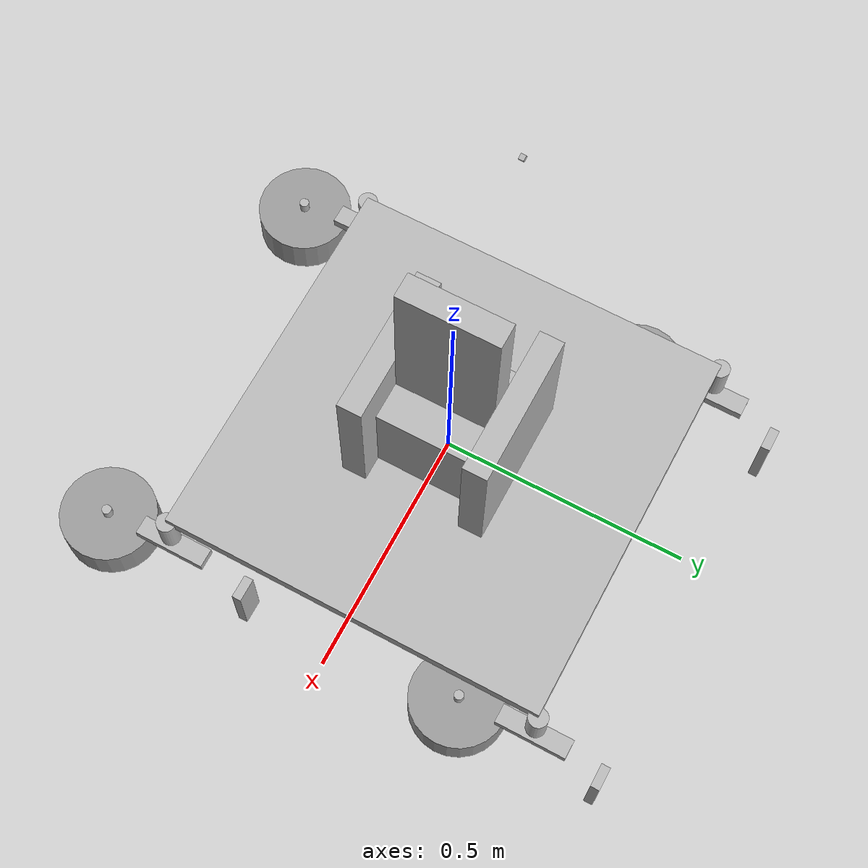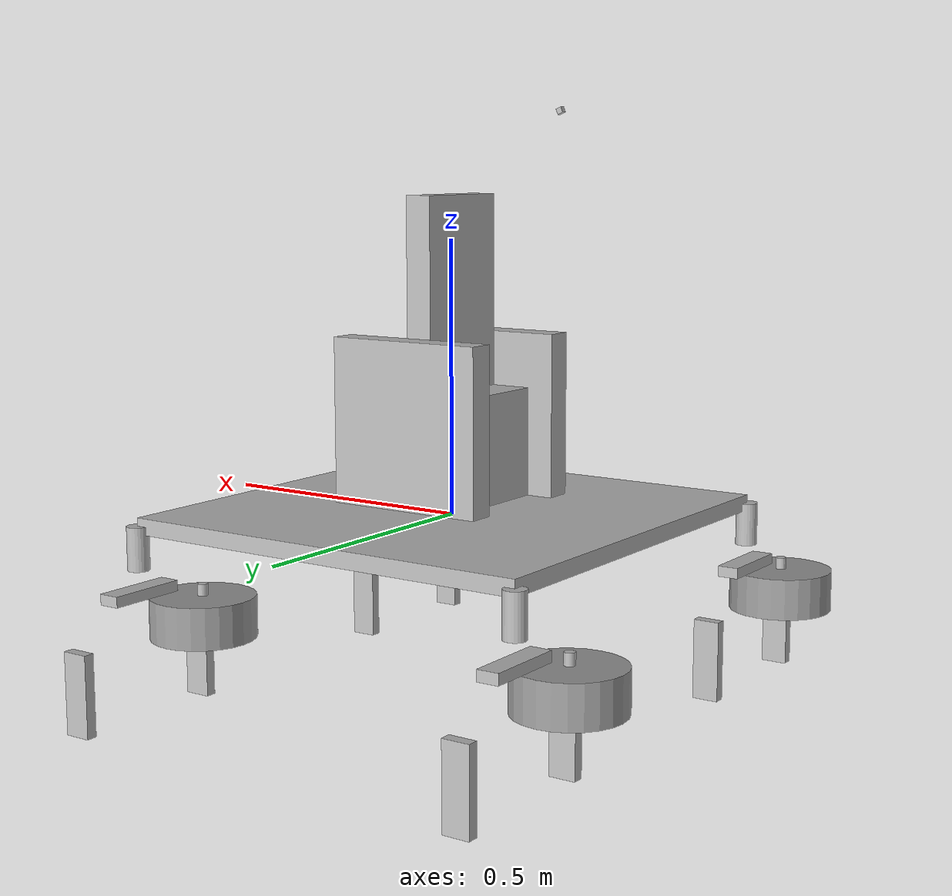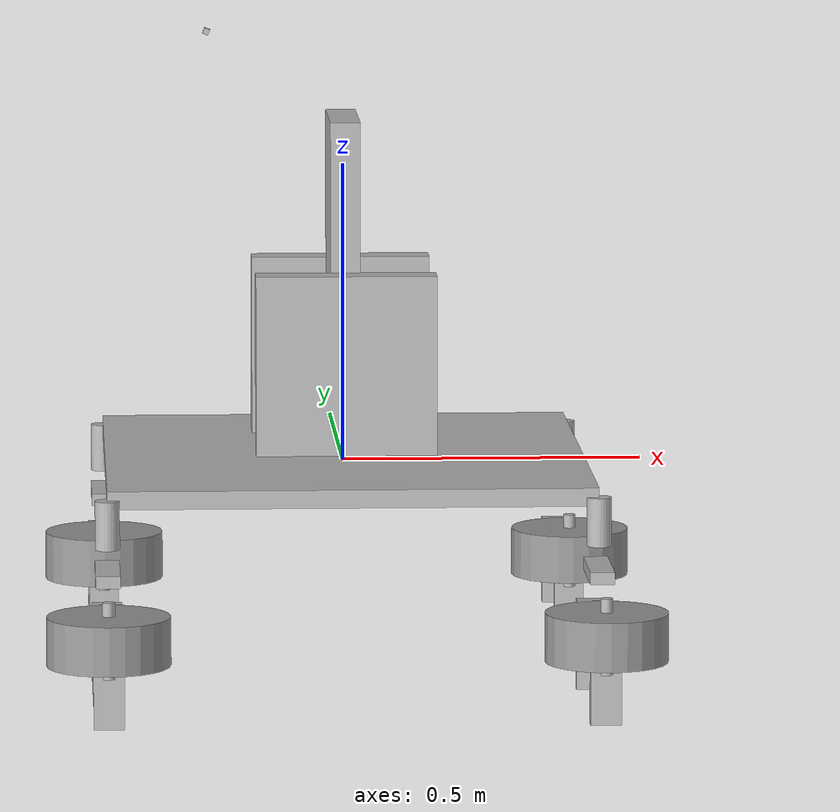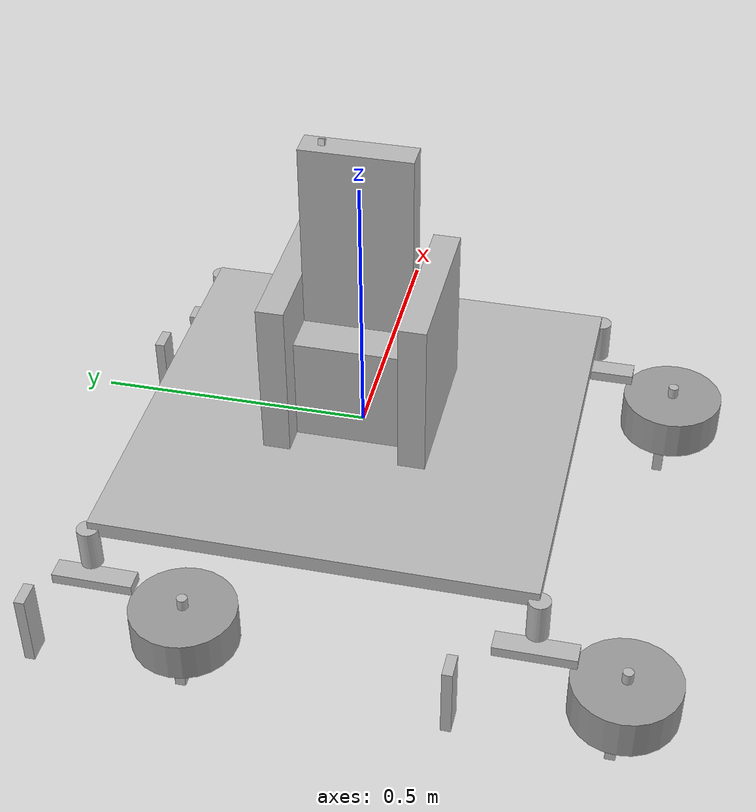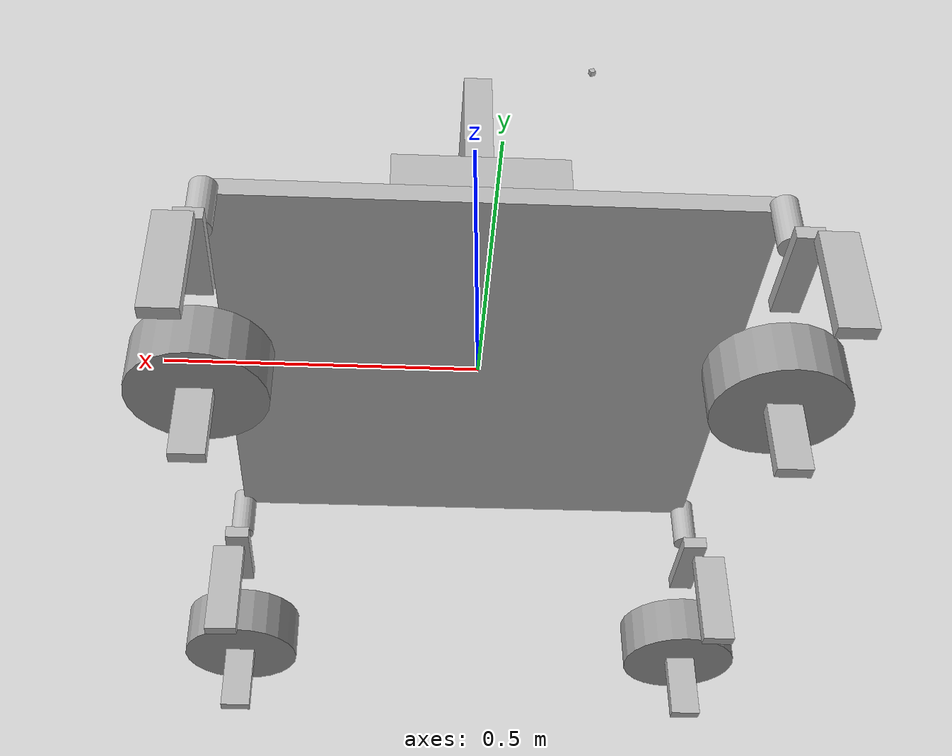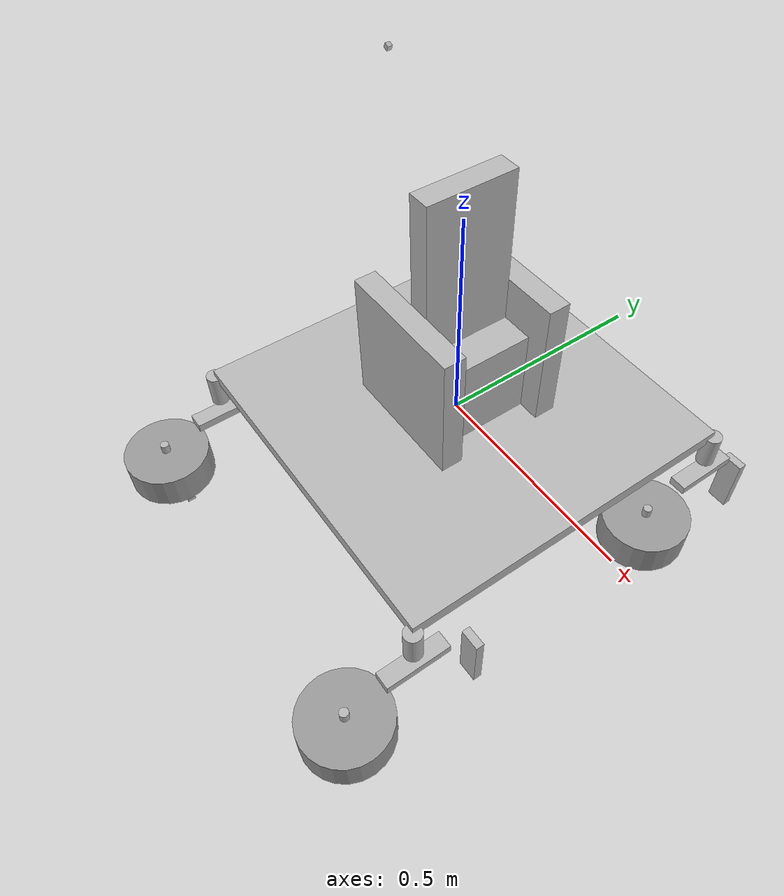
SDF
<sdf version='1.7'>
  <model name='new_wheelchair'>
    <link name='base_footprint'>
      <inertial>
        <pose>0.028571 -4.6e-05 0.124714 0 -0 0</pose>
        <mass>35</mass>
        <inertia>
          <ixx>1.06323</ixx>
          <ixy>-0.000438357</ixy>
          <ixz>-0.0402845</ixz>
          <iyy>0.787999</iyy>
          <iyz>6.41592e-05</iyz>
          <izz>1.1181</izz>
        </inertia>
      </inertial>
      <collision name='base_footprint_fixed_joint_lump__chassis_link_collision'>
        <pose>0 0 0 0 0 -0.003185</pose>
        <geometry>
          <box>
            <size>0.8 0.8 0.03</size>
          </box>
        </geometry>
      </collision>
      <collision name='base_footprint_fixed_joint_lump__camera_link_collision_1'>
        <pose>-0.227474 0.000725 0.722824 -0.000687 0.399999 -0.006575</pose>
        <geometry>
          <box>
            <size>0.01 0.01 0.01</size>
          </box>
        </geometry>
        <surface>
          <contact>
            <ode/>
          </contact>
          <friction>
            <ode/>
          </friction>
        </surface>
      </collision>
      <collision name='base_footprint_fixed_joint_lump__chair_collision_2'>
        <pose>0 0 0.13 0 0 -0.003185</pose>
        <geometry>
          <box>
            <size>0.2 0.2 0.2</size>
          </box>
        </geometry>
      </collision>
      <collision name='base_footprint_fixed_joint_lump__armrest_left_collision_3'>
        <pose>0.000557 0.124999 0.18 0 0 -0.003185</pose>
        <geometry>
          <box>
            <size>0.3 0.05 0.3</size>
          </box>
        </geometry>
      </collision>
      <collision name='base_footprint_fixed_joint_lump__armrest_right_collision_4'>
        <pose>-0.000557 -0.124999 0.18 0 0 -0.003185</pose>
        <geometry>
          <box>
            <size>0.3 0.05 0.3</size>
          </box>
        </geometry>
      </collision>
      <collision name='base_footprint_fixed_joint_lump__backrest_right_collision_5'>
        <pose>0 0.000199 0.33 0 0 -0.003185</pose>
        <geometry>
          <box>
            <size>0.05 0.2 0.5</size>
          </box>
        </geometry>
      </collision>
      <visual name='base_footprint_fixed_joint_lump__chassis_link_visual'>
        <pose>0 0 0 0 0 -0.003185</pose>
        <geometry>
          <box>
            <size>0.8 0.8 0.03</size>
          </box>
        </geometry>
      </visual>
      <visual name='base_footprint_fixed_joint_lump__camera_link_visual_1'>
        <pose>-0.227474 0.000725 0.722824 -0.000687 0.399999 -0.006575</pose>
        <geometry>
          <box>
            <size>0.01 0.01 0.01</size>
          </box>
        </geometry>
      </visual>
      <visual name='base_footprint_fixed_joint_lump__chair_visual_2'>
        <pose>0 0 0.13 0 0 -0.003185</pose>
        <geometry>
          <box>
            <size>0.2 0.2 0.2</size>
          </box>
        </geometry>
      </visual>
      <visual name='base_footprint_fixed_joint_lump__armrest_left_visual_3'>
        <pose>0.000557 0.124999 0.18 0 0 -0.003185</pose>
        <geometry>
          <box>
            <size>0.3 0.05 0.3</size>
          </box>
        </geometry>
      </visual>
      <visual name='base_footprint_fixed_joint_lump__armrest_right_visual_4'>
        <pose>-0.000557 -0.124999 0.18 0 0 -0.003185</pose>
        <geometry>
          <box>
            <size>0.3 0.05 0.3</size>
          </box>
        </geometry>
      </visual>
      <visual name='base_footprint_fixed_joint_lump__backrest_right_visual_5'>
        <pose>0 0.000199 0.33 0 0 -0.003185</pose>
        <geometry>
          <box>
            <size>0.05 0.2 0.5</size>
          </box>
        </geometry>
      </visual>
      <gravity>1</gravity>
      <velocity_decay/>
      <sensor name='camera1' type='camera'>
        <update_rate>30</update_rate>
        <camera name='head'>
          <horizontal_fov>1.39626</horizontal_fov>
          <image>
            <width>800</width>
            <height>800</height>
            <format>R8G8B8</format>
          </image>
          <clip>
            <near>0.02</near>
            <far>300</far>
          </clip>
          <noise>
            <type>gaussian</type>
            <mean>0</mean>
            <stddev>0.007</stddev>
          </noise>
        </camera>
        <plugin name='camera_controller' filename='libgazebo_ros_camera.so'>
          <alwaysOn>1</alwaysOn>
          <updateRate>30.0</updateRate>
          <cameraName>camera1</cameraName>
          <imageTopicName>image_raw</imageTopicName>
          <cameraInfoTopicName>camera_info</cameraInfoTopicName>
          <frameName>camera_link</frameName>
          <hackBaseline>0.07</hackBaseline>
          <distortionK1>0.0</distortionK1>
          <distortionK2>0.0</distortionK2>
          <distortionK3>0.0</distortionK3>
          <distortionT1>0.0</distortionT1>
          <distortionT2>0.0</distortionT2>
        </plugin>
        <pose>-0.15 0.000239 0.35 -0 0.2 -0.003185</pose>
      </sensor>
    </link>
    <joint name='steer_joint_1' type='revolute'>
      <pose relative_to='base_footprint'>0.401272 0.398724 -0.04 0 0 -0.003185</pose>
      <parent>base_footprint</parent>
      <child>fork_up_1</child>
      <axis>
        <xyz>0 0 1</xyz>
        <limit>
          <lower>-1e+16</lower>
          <upper>1e+16</upper>
        </limit>
        <dynamics>
          <spring_reference>0</spring_reference>
          <spring_stiffness>0</spring_stiffness>
        </dynamics>
      </axis>
    </joint>
    <link name='fork_up_1'>
      <pose relative_to='steer_joint_1'>0 0 0 0 -0 0</pose>
      <inertial>
        <pose>0 -0.000313 -0.127031 0 -0 0</pose>
        <mass>3.2</mass>
        <inertia>
          <ixx>0.0139212</ixx>
          <ixy>0</ixy>
          <ixz>0</ixz>
          <iyy>0.00992921</iyy>
          <iyz>-3.34688e-05</iyz>
          <izz>0.00434867</izz>
        </inertia>
      </inertial>
      <collision name='fork_up_1_collision'>
        <pose>0 0 0 0 -0 0</pose>
        <geometry>
          <cylinder>
            <length>0.08</length>
            <radius>0.02</radius>
          </cylinder>
        </geometry>
      </collision>
      <collision name='fork_up_1_fixed_joint_lump__support_1_collision_1'>
        <pose>0 0 -0.081 0 -0 0</pose>
        <geometry>
          <box>
            <size>0.04 0.15 0.02</size>
          </box>
        </geometry>
      </collision>
      <collision name='fork_up_1_fixed_joint_lump__fork_left_1_collision_2'>
        <pose>0 0.149 -0.231 0 -0 0</pose>
        <geometry>
          <box>
            <size>0.05 0.02 0.15</size>
          </box>
        </geometry>
      </collision>
      <collision name='fork_up_1_fixed_joint_lump__wheel_axis_1_collision_3'>
        <pose>0 -0.161 -0.160128 -3.14 0 0</pose>
        <geometry>
          <cylinder>
            <length>0.125</length>
            <radius>0.01</radius>
          </cylinder>
        </geometry>
      </collision>
      <collision name='fork_up_1_fixed_joint_lump__fork_right_1_collision_4'>
        <pose>0 -0.149 -0.231 0 -0 0</pose>
        <geometry>
          <box>
            <size>0.05 0.02 0.15</size>
          </box>
        </geometry>
      </collision>
      <visual name='fork_up_1_visual'>
        <pose>0 0 0 0 -0 0</pose>
        <geometry>
          <cylinder>
            <length>0.08</length>
            <radius>0.02</radius>
          </cylinder>
        </geometry>
      </visual>
      <visual name='fork_up_1_fixed_joint_lump__support_1_visual_1'>
        <pose>0 0 -0.081 0 -0 0</pose>
        <geometry>
          <box>
            <size>0.04 0.15 0.02</size>
          </box>
        </geometry>
      </visual>
      <visual name='fork_up_1_fixed_joint_lump__fork_left_1_visual_2'>
        <pose>0 0.149 -0.231 0 -0 0</pose>
        <geometry>
          <box>
            <size>0.05 0.02 0.15</size>
          </box>
        </geometry>
      </visual>
      <visual name='fork_up_1_fixed_joint_lump__wheel_axis_1_visual_3'>
        <pose>0 -0.161 -0.160128 -3.14 0 0</pose>
        <geometry>
          <cylinder>
            <length>0.125</length>
            <radius>0.01</radius>
          </cylinder>
        </geometry>
      </visual>
      <visual name='fork_up_1_fixed_joint_lump__fork_right_1_visual_4'>
        <pose>0 -0.149 -0.231 0 -0 0</pose>
        <geometry>
          <box>
            <size>0.05 0.02 0.15</size>
          </box>
        </geometry>
      </visual>
    </link>
    <joint name='wheel_joint_1' type='revolute'>
      <pose relative_to='fork_up_1'>0 -0.161 -0.160128 -3.14 0 0</pose>
      <parent>fork_up_1</parent>
      <child>wheel_1</child>
      <axis>
        <xyz>0 0 1</xyz>
        <limit>
          <lower>-1e+16</lower>
          <upper>1e+16</upper>
        </limit>
        <dynamics>
          <spring_reference>0</spring_reference>
          <spring_stiffness>0</spring_stiffness>
        </dynamics>
      </axis>
    </joint>
    <link name='wheel_1'>
      <pose relative_to='wheel_joint_1'>0 0 0 0 -0 0</pose>
      <inertial>
        <pose>0 0 0 0 -0 0</pose>
        <mass>0.5</mass>
        <inertia>
          <ixx>0.0025</ixx>
          <ixy>0</ixy>
          <ixz>0</ixz>
          <iyy>0.00125</iyy>
          <iyz>0</iyz>
          <izz>0.00125</izz>
        </inertia>
      </inertial>
      <collision name='wheel_1_collision'>
        <pose>0 0 0 0 -0 0</pose>
        <geometry>
          <cylinder>
            <length>0.08</length>
            <radius>0.1</radius>
          </cylinder>
        </geometry>
        <surface>
          <contact>
            <ode>
              <kp>1e+07</kp>
              <kd>0.8</kd>
            </ode>
          </contact>
          <friction>
            <ode>
              <mu>1.28</mu>
              <mu2>1.1</mu2>
            </ode>
          </friction>
        </surface>
      </collision>
      <visual name='wheel_1_visual'>
        <pose>0 0 0 0 -0 0</pose>
        <geometry>
          <cylinder>
            <length>0.08</length>
            <radius>0.1</radius>
          </cylinder>
        </geometry>
        <material>
          <script>
            <name>Gazebo/Grey</name>
            <uri>file://media/materials/scripts/gazebo.material</uri>
          </script>
        </material>
      </visual>
      <gravity>1</gravity>
      <velocity_decay/>
    </link>
    <joint name='steer_joint_2' type='revolute'>
      <pose relative_to='base_footprint'>-0.398724 0.401272 -0.04 0 0 -0.003185</pose>
      <parent>base_footprint</parent>
      <child>fork_up_2</child>
      <axis>
        <xyz>0 0 1</xyz>
        <limit>
          <lower>-1e+16</lower>
          <upper>1e+16</upper>
        </limit>
        <dynamics>
          <spring_reference>0</spring_reference>
          <spring_stiffness>0</spring_stiffness>
        </dynamics>
      </axis>
    </joint>
    <link name='fork_up_2'>
      <pose relative_to='steer_joint_2'>0 0 0 0 -0 0</pose>
      <inertial>
        <pose>0 -0.000313 -0.127031 0 -0 0</pose>
        <mass>3.2</mass>
        <inertia>
          <ixx>0.0139212</ixx>
          <ixy>0</ixy>
          <ixz>0</ixz>
          <iyy>0.00992921</iyy>
          <iyz>-3.34688e-05</iyz>
          <izz>0.00434867</izz>
        </inertia>
      </inertial>
      <collision name='fork_up_2_collision'>
        <pose>0 0 0 0 -0 0</pose>
        <geometry>
          <cylinder>
            <length>0.08</length>
            <radius>0.02</radius>
          </cylinder>
        </geometry>
      </collision>
      <collision name='fork_up_2_fixed_joint_lump__support_2_collision_1'>
        <pose>0 0 -0.081 0 -0 0</pose>
        <geometry>
          <box>
            <size>0.04 0.15 0.02</size>
          </box>
        </geometry>
      </collision>
      <collision name='fork_up_2_fixed_joint_lump__fork_left_2_collision_2'>
        <pose>0 0.149 -0.231 0 -0 0</pose>
        <geometry>
          <box>
            <size>0.05 0.02 0.15</size>
          </box>
        </geometry>
      </collision>
      <collision name='fork_up_2_fixed_joint_lump__wheel_axis_2_collision_3'>
        <pose>0 -0.161 -0.160128 -3.14 0 0</pose>
        <geometry>
          <cylinder>
            <length>0.125</length>
            <radius>0.01</radius>
          </cylinder>
        </geometry>
      </collision>
      <collision name='fork_up_2_fixed_joint_lump__fork_right_2_collision_4'>
        <pose>0 -0.149 -0.231 0 -0 0</pose>
        <geometry>
          <box>
            <size>0.05 0.02 0.15</size>
          </box>
        </geometry>
      </collision>
      <visual name='fork_up_2_visual'>
        <pose>0 0 0 0 -0 0</pose>
        <geometry>
          <cylinder>
            <length>0.08</length>
            <radius>0.02</radius>
          </cylinder>
        </geometry>
      </visual>
      <visual name='fork_up_2_fixed_joint_lump__support_2_visual_1'>
        <pose>0 0 -0.081 0 -0 0</pose>
        <geometry>
          <box>
            <size>0.04 0.15 0.02</size>
          </box>
        </geometry>
      </visual>
      <visual name='fork_up_2_fixed_joint_lump__fork_left_2_visual_2'>
        <pose>0 0.149 -0.231 0 -0 0</pose>
        <geometry>
          <box>
            <size>0.05 0.02 0.15</size>
          </box>
        </geometry>
      </visual>
      <visual name='fork_up_2_fixed_joint_lump__wheel_axis_2_visual_3'>
        <pose>0 -0.161 -0.160128 -3.14 0 0</pose>
        <geometry>
          <cylinder>
            <length>0.125</length>
            <radius>0.01</radius>
          </cylinder>
        </geometry>
      </visual>
      <visual name='fork_up_2_fixed_joint_lump__fork_right_2_visual_4'>
        <pose>0 -0.149 -0.231 0 -0 0</pose>
        <geometry>
          <box>
            <size>0.05 0.02 0.15</size>
          </box>
        </geometry>
      </visual>
    </link>
    <joint name='wheel_joint_2' type='revolute'>
      <pose relative_to='fork_up_2'>0 -0.161 -0.160128 -3.14 0 0</pose>
      <parent>fork_up_2</parent>
      <child>wheel_2</child>
      <axis>
        <xyz>0 0 1</xyz>
        <limit>
          <lower>-1e+16</lower>
          <upper>1e+16</upper>
        </limit>
        <dynamics>
          <spring_reference>0</spring_reference>
          <spring_stiffness>0</spring_stiffness>
        </dynamics>
      </axis>
    </joint>
    <link name='wheel_2'>
      <pose relative_to='wheel_joint_2'>0 0 0 0 -0 0</pose>
      <inertial>
        <pose>0 0 0 0 -0 0</pose>
        <mass>0.5</mass>
        <inertia>
          <ixx>0.0025</ixx>
          <ixy>0</ixy>
          <ixz>0</ixz>
          <iyy>0.00125</iyy>
          <iyz>0</iyz>
          <izz>0.00125</izz>
        </inertia>
      </inertial>
      <collision name='wheel_2_collision'>
        <pose>0 0 0 0 -0 0</pose>
        <geometry>
          <cylinder>
            <length>0.08</length>
            <radius>0.1</radius>
          </cylinder>
        </geometry>
        <surface>
          <contact>
            <ode>
              <kp>1e+07</kp>
              <kd>0.8</kd>
            </ode>
          </contact>
          <friction>
            <ode>
              <mu>1.28</mu>
              <mu2>1.1</mu2>
            </ode>
          </friction>
        </surface>
      </collision>
      <visual name='wheel_2_visual'>
        <pose>0 0 0 0 -0 0</pose>
        <geometry>
          <cylinder>
            <length>0.08</length>
            <radius>0.1</radius>
          </cylinder>
        </geometry>
        <material>
          <script>
            <name>Gazebo/Grey</name>
            <uri>file://media/materials/scripts/gazebo.material</uri>
          </script>
        </material>
      </visual>
      <gravity>1</gravity>
      <velocity_decay/>
    </link>
    <joint name='steer_joint_3' type='revolute'>
      <pose relative_to='base_footprint'>0.398724 -0.401272 -0.04 0 0 -0.003185</pose>
      <parent>base_footprint</parent>
      <child>fork_up_3</child>
      <axis>
        <xyz>0 0 1</xyz>
        <limit>
          <lower>-1e+16</lower>
          <upper>1e+16</upper>
        </limit>
        <dynamics>
          <spring_reference>0</spring_reference>
          <spring_stiffness>0</spring_stiffness>
        </dynamics>
      </axis>
    </joint>
    <link name='fork_up_3'>
      <pose relative_to='steer_joint_3'>0 0 0 0 -0 0</pose>
      <inertial>
        <pose>0 -0.000313 -0.127031 0 -0 0</pose>
        <mass>3.2</mass>
        <inertia>
          <ixx>0.0139212</ixx>
          <ixy>0</ixy>
          <ixz>0</ixz>
          <iyy>0.00992921</iyy>
          <iyz>-3.34688e-05</iyz>
          <izz>0.00434867</izz>
        </inertia>
      </inertial>
      <collision name='fork_up_3_collision'>
        <pose>0 0 0 0 -0 0</pose>
        <geometry>
          <cylinder>
            <length>0.08</length>
            <radius>0.02</radius>
          </cylinder>
        </geometry>
      </collision>
      <collision name='fork_up_3_fixed_joint_lump__support_3_collision_1'>
        <pose>0 0 -0.081 0 -0 0</pose>
        <geometry>
          <box>
            <size>0.04 0.15 0.02</size>
          </box>
        </geometry>
      </collision>
      <collision name='fork_up_3_fixed_joint_lump__fork_left_3_collision_2'>
        <pose>0 0.149 -0.231 0 -0 0</pose>
        <geometry>
          <box>
            <size>0.05 0.02 0.15</size>
          </box>
        </geometry>
      </collision>
      <collision name='fork_up_3_fixed_joint_lump__wheel_axis_3_collision_3'>
        <pose>0 -0.161 -0.160128 -3.14 0 0</pose>
        <geometry>
          <cylinder>
            <length>0.125</length>
            <radius>0.01</radius>
          </cylinder>
        </geometry>
      </collision>
      <collision name='fork_up_3_fixed_joint_lump__fork_right_3_collision_4'>
        <pose>0 -0.149 -0.231 0 -0 0</pose>
        <geometry>
          <box>
            <size>0.05 0.02 0.15</size>
          </box>
        </geometry>
      </collision>
      <visual name='fork_up_3_visual'>
        <pose>0 0 0 0 -0 0</pose>
        <geometry>
          <cylinder>
            <length>0.08</length>
            <radius>0.02</radius>
          </cylinder>
        </geometry>
      </visual>
      <visual name='fork_up_3_fixed_joint_lump__support_3_visual_1'>
        <pose>0 0 -0.081 0 -0 0</pose>
        <geometry>
          <box>
            <size>0.04 0.15 0.02</size>
          </box>
        </geometry>
      </visual>
      <visual name='fork_up_3_fixed_joint_lump__fork_left_3_visual_2'>
        <pose>0 0.149 -0.231 0 -0 0</pose>
        <geometry>
          <box>
            <size>0.05 0.02 0.15</size>
          </box>
        </geometry>
      </visual>
      <visual name='fork_up_3_fixed_joint_lump__wheel_axis_3_visual_3'>
        <pose>0 -0.161 -0.160128 -3.14 0 0</pose>
        <geometry>
          <cylinder>
            <length>0.125</length>
            <radius>0.01</radius>
          </cylinder>
        </geometry>
      </visual>
      <visual name='fork_up_3_fixed_joint_lump__fork_right_3_visual_4'>
        <pose>0 -0.149 -0.231 0 -0 0</pose>
        <geometry>
          <box>
            <size>0.05 0.02 0.15</size>
          </box>
        </geometry>
      </visual>
    </link>
    <joint name='wheel_joint_3' type='revolute'>
      <pose relative_to='fork_up_3'>0 -0.161 -0.160128 -3.14 0 0</pose>
      <parent>fork_up_3</parent>
      <child>wheel_3</child>
      <axis>
        <xyz>0 0 1</xyz>
        <limit>
          <lower>-1e+16</lower>
          <upper>1e+16</upper>
        </limit>
        <dynamics>
          <spring_reference>0</spring_reference>
          <spring_stiffness>0</spring_stiffness>
        </dynamics>
      </axis>
    </joint>
    <link name='wheel_3'>
      <pose relative_to='wheel_joint_3'>0 0 0 0 -0 0</pose>
      <inertial>
        <pose>0 0 0 0 -0 0</pose>
        <mass>0.5</mass>
        <inertia>
          <ixx>0.0025</ixx>
          <ixy>0</ixy>
          <ixz>0</ixz>
          <iyy>0.00125</iyy>
          <iyz>0</iyz>
          <izz>0.00125</izz>
        </inertia>
      </inertial>
      <collision name='wheel_3_collision'>
        <pose>0 0 0 0 -0 0</pose>
        <geometry>
          <cylinder>
            <length>0.08</length>
            <radius>0.1</radius>
          </cylinder>
        </geometry>
        <surface>
          <contact>
            <ode>
              <kp>1e+07</kp>
              <kd>0.8</kd>
            </ode>
          </contact>
          <friction>
            <ode>
              <mu>1.28</mu>
              <mu2>1.1</mu2>
            </ode>
          </friction>
        </surface>
      </collision>
      <visual name='wheel_3_visual'>
        <pose>0 0 0 0 -0 0</pose>
        <geometry>
          <cylinder>
            <length>0.08</length>
            <radius>0.1</radius>
          </cylinder>
        </geometry>
        <material>
          <script>
            <name>Gazebo/Grey</name>
            <uri>file://media/materials/scripts/gazebo.material</uri>
          </script>
        </material>
      </visual>
      <gravity>1</gravity>
      <velocity_decay/>
    </link>
    <joint name='steer_joint_4' type='revolute'>
      <pose relative_to='base_footprint'>-0.401272 -0.398724 -0.04 0 0 -0.003185</pose>
      <parent>base_footprint</parent>
      <child>fork_up_4</child>
      <axis>
        <xyz>0 0 1</xyz>
        <limit>
          <lower>-1e+16</lower>
          <upper>1e+16</upper>
        </limit>
        <dynamics>
          <spring_reference>0</spring_reference>
          <spring_stiffness>0</spring_stiffness>
        </dynamics>
      </axis>
    </joint>
    <link name='fork_up_4'>
      <pose relative_to='steer_joint_4'>0 0 0 0 -0 0</pose>
      <inertial>
        <pose>0 -0.000313 -0.127031 0 -0 0</pose>
        <mass>3.2</mass>
        <inertia>
          <ixx>0.0139212</ixx>
          <ixy>0</ixy>
          <ixz>0</ixz>
          <iyy>0.00992921</iyy>
          <iyz>-3.34688e-05</iyz>
          <izz>0.00434867</izz>
        </inertia>
      </inertial>
      <collision name='fork_up_4_collision'>
        <pose>0 0 0 0 -0 0</pose>
        <geometry>
          <cylinder>
            <length>0.08</length>
            <radius>0.02</radius>
          </cylinder>
        </geometry>
      </collision>
      <collision name='fork_up_4_fixed_joint_lump__support_4_collision_1'>
        <pose>0 0 -0.081 0 -0 0</pose>
        <geometry>
          <box>
            <size>0.04 0.15 0.02</size>
          </box>
        </geometry>
      </collision>
      <collision name='fork_up_4_fixed_joint_lump__fork_left_4_collision_2'>
        <pose>0 0.149 -0.231 0 -0 0</pose>
        <geometry>
          <box>
            <size>0.05 0.02 0.15</size>
          </box>
        </geometry>
      </collision>
      <collision name='fork_up_4_fixed_joint_lump__wheel_axis_4_collision_3'>
        <pose>0 -0.161 -0.160128 -3.14 0 0</pose>
        <geometry>
          <cylinder>
            <length>0.125</length>
            <radius>0.01</radius>
          </cylinder>
        </geometry>
      </collision>
      <collision name='fork_up_4_fixed_joint_lump__fork_right_4_collision_4'>
        <pose>0 -0.149 -0.231 0 -0 0</pose>
        <geometry>
          <box>
            <size>0.05 0.02 0.15</size>
          </box>
        </geometry>
      </collision>
      <visual name='fork_up_4_visual'>
        <pose>0 0 0 0 -0 0</pose>
        <geometry>
          <cylinder>
            <length>0.08</length>
            <radius>0.02</radius>
          </cylinder>
        </geometry>
      </visual>
      <visual name='fork_up_4_fixed_joint_lump__support_4_visual_1'>
        <pose>0 0 -0.081 0 -0 0</pose>
        <geometry>
          <box>
            <size>0.04 0.15 0.02</size>
          </box>
        </geometry>
      </visual>
      <visual name='fork_up_4_fixed_joint_lump__fork_left_4_visual_2'>
        <pose>0 0.149 -0.231 0 -0 0</pose>
        <geometry>
          <box>
            <size>0.05 0.02 0.15</size>
          </box>
        </geometry>
      </visual>
      <visual name='fork_up_4_fixed_joint_lump__wheel_axis_4_visual_3'>
        <pose>0 -0.161 -0.160128 -3.14 0 0</pose>
        <geometry>
          <cylinder>
            <length>0.125</length>
            <radius>0.01</radius>
          </cylinder>
        </geometry>
      </visual>
      <visual name='fork_up_4_fixed_joint_lump__fork_right_4_visual_4'>
        <pose>0 -0.149 -0.231 0 -0 0</pose>
        <geometry>
          <box>
            <size>0.05 0.02 0.15</size>
          </box>
        </geometry>
      </visual>
    </link>
    <joint name='wheel_joint_4' type='revolute'>
      <pose relative_to='fork_up_4'>0 -0.161 -0.160128 -3.14 0 0</pose>
      <parent>fork_up_4</parent>
      <child>wheel_4</child>
      <axis>
        <xyz>0 0 1</xyz>
        <limit>
          <lower>-1e+16</lower>
          <upper>1e+16</upper>
        </limit>
        <dynamics>
          <spring_reference>0</spring_reference>
          <spring_stiffness>0</spring_stiffness>
        </dynamics>
      </axis>
    </joint>
    <link name='wheel_4'>
      <pose relative_to='wheel_joint_4'>0 0 0 0 -0 0</pose>
      <inertial>
        <pose>0 0 0 0 -0 0</pose>
        <mass>0.5</mass>
        <inertia>
          <ixx>0.0025</ixx>
          <ixy>0</ixy>
          <ixz>0</ixz>
          <iyy>0.00125</iyy>
          <iyz>0</iyz>
          <izz>0.00125</izz>
        </inertia>
      </inertial>
      <collision name='wheel_4_collision'>
        <pose>0 0 0 0 -0 0</pose>
        <geometry>
          <cylinder>
            <length>0.08</length>
            <radius>0.1</radius>
          </cylinder>
        </geometry>
        <surface>
          <contact>
            <ode>
              <kp>1e+07</kp>
              <kd>0.8</kd>
            </ode>
          </contact>
          <friction>
            <ode>
              <mu>1.28</mu>
              <mu2>1.1</mu2>
            </ode>
          </friction>
        </surface>
      </collision>
      <visual name='wheel_4_visual'>
        <pose>0 0 0 0 -0 0</pose>
        <geometry>
          <cylinder>
            <length>0.08</length>
            <radius>0.1</radius>
          </cylinder>
        </geometry>
        <material>
          <script>
            <name>Gazebo/Grey</name>
            <uri>file://media/materials/scripts/gazebo.material</uri>
          </script>
        </material>
      </visual>
      <gravity>1</gravity>
      <velocity_decay/>
    </link>
    <joint name='steer_joint_1' type='revolute'>
      <pose relative_to='base_footprint'>0.401272 0.398724 -0.04 0 0 -0.003185</pose>
      <parent>base_footprint</parent>
      <child>fork_up_1</child>
      <axis>
        <xyz>0 0 1</xyz>
        <limit>
          <lower>-1e+16</lower>
          <upper>1e+16</upper>
        </limit>
        <dynamics>
          <spring_reference>0</spring_reference>
          <spring_stiffness>0</spring_stiffness>
        </dynamics>
      </axis>
    </joint>
    <link name='fork_up_1'>
      <pose relative_to='steer_joint_1'>0 0 0 0 -0 0</pose>
      <inertial>
        <pose>0 -0.000313 -0.127031 0 -0 0</pose>
        <mass>3.2</mass>
        <inertia>
          <ixx>0.0139212</ixx>
          <ixy>0</ixy>
          <ixz>0</ixz>
          <iyy>0.00992921</iyy>
          <iyz>-3.34688e-05</iyz>
          <izz>0.00434867</izz>
        </inertia>
      </inertial>
      <collision name='fork_up_1_collision'>
        <pose>0 0 0 0 -0 0</pose>
        <geometry>
          <cylinder>
            <length>0.08</length>
            <radius>0.02</radius>
          </cylinder>
        </geometry>
      </collision>
      <collision name='fork_up_1_fixed_joint_lump__support_1_collision_1'>
        <pose>0 0 -0.081 0 -0 0</pose>
        <geometry>
          <box>
            <size>0.04 0.15 0.02</size>
          </box>
        </geometry>
      </collision>
      <collision name='fork_up_1_fixed_joint_lump__fork_left_1_collision_2'>
        <pose>0 0.149 -0.231 0 -0 0</pose>
        <geometry>
          <box>
            <size>0.05 0.02 0.15</size>
          </box>
        </geometry>
      </collision>
      <collision name='fork_up_1_fixed_joint_lump__wheel_axis_1_collision_3'>
        <pose>0 -0.161 -0.160128 -3.14 0 0</pose>
        <geometry>
          <cylinder>
            <length>0.125</length>
            <radius>0.01</radius>
          </cylinder>
        </geometry>
      </collision>
      <collision name='fork_up_1_fixed_joint_lump__fork_right_1_collision_4'>
        <pose>0 -0.149 -0.231 0 -0 0</pose>
        <geometry>
          <box>
            <size>0.05 0.02 0.15</size>
          </box>
        </geometry>
      </collision>
      <visual name='fork_up_1_visual'>
        <pose>0 0 0 0 -0 0</pose>
        <geometry>
          <cylinder>
            <length>0.08</length>
            <radius>0.02</radius>
          </cylinder>
        </geometry>
      </visual>
      <visual name='fork_up_1_fixed_joint_lump__support_1_visual_1'>
        <pose>0 0 -0.081 0 -0 0</pose>
        <geometry>
          <box>
            <size>0.04 0.15 0.02</size>
          </box>
        </geometry>
      </visual>
      <visual name='fork_up_1_fixed_joint_lump__fork_left_1_visual_2'>
        <pose>0 0.149 -0.231 0 -0 0</pose>
        <geometry>
          <box>
            <size>0.05 0.02 0.15</size>
          </box>
        </geometry>
      </visual>
      <visual name='fork_up_1_fixed_joint_lump__wheel_axis_1_visual_3'>
        <pose>0 -0.161 -0.160128 -3.14 0 0</pose>
        <geometry>
          <cylinder>
            <length>0.125</length>
            <radius>0.01</radius>
          </cylinder>
        </geometry>
      </visual>
      <visual name='fork_up_1_fixed_joint_lump__fork_right_1_visual_4'>
        <pose>0 -0.149 -0.231 0 -0 0</pose>
        <geometry>
          <box>
            <size>0.05 0.02 0.15</size>
          </box>
        </geometry>
      </visual>
    </link>
    <joint name='wheel_joint_1' type='revolute'>
      <pose relative_to='fork_up_1'>0 -0.161 -0.160128 -3.14 0 0</pose>
      <parent>fork_up_1</parent>
      <child>wheel_1</child>
      <axis>
        <xyz>0 0 1</xyz>
        <limit>
          <lower>-1e+16</lower>
          <upper>1e+16</upper>
        </limit>
        <dynamics>
          <spring_reference>0</spring_reference>
          <spring_stiffness>0</spring_stiffness>
        </dynamics>
      </axis>
    </joint>
    <link name='wheel_1'>
      <pose relative_to='wheel_joint_1'>0 0 0 0 -0 0</pose>
      <inertial>
        <pose>0 0 0 0 -0 0</pose>
        <mass>0.5</mass>
        <inertia>
          <ixx>0.0025</ixx>
          <ixy>0</ixy>
          <ixz>0</ixz>
          <iyy>0.00125</iyy>
          <iyz>0</iyz>
          <izz>0.00125</izz>
        </inertia>
      </inertial>
      <collision name='wheel_1_collision'>
        <pose>0 0 0 0 -0 0</pose>
        <geometry>
          <cylinder>
            <length>0.08</length>
            <radius>0.1</radius>
          </cylinder>
        </geometry>
        <surface>
          <contact>
            <ode>
              <kp>1e+07</kp>
              <kd>0.8</kd>
            </ode>
          </contact>
          <friction>
            <ode>
              <mu>1.28</mu>
              <mu2>1.1</mu2>
            </ode>
          </friction>
        </surface>
      </collision>
      <visual name='wheel_1_visual'>
        <pose>0 0 0 0 -0 0</pose>
        <geometry>
          <cylinder>
            <length>0.08</length>
            <radius>0.1</radius>
          </cylinder>
        </geometry>
        <material>
          <script>
            <name>Gazebo/Grey</name>
            <uri>file://media/materials/scripts/gazebo.material</uri>
          </script>
        </material>
      </visual>
      <gravity>1</gravity>
      <velocity_decay/>
    </link>
    <joint name='steer_joint_2' type='revolute'>
      <pose relative_to='base_footprint'>-0.398724 0.401272 -0.04 0 0 -0.003185</pose>
      <parent>base_footprint</parent>
      <child>fork_up_2</child>
      <axis>
        <xyz>0 0 1</xyz>
        <limit>
          <lower>-1e+16</lower>
          <upper>1e+16</upper>
        </limit>
        <dynamics>
          <spring_reference>0</spring_reference>
          <spring_stiffness>0</spring_stiffness>
        </dynamics>
      </axis>
    </joint>
    <link name='fork_up_2'>
      <pose relative_to='steer_joint_2'>0 0 0 0 -0 0</pose>
      <inertial>
        <pose>0 -0.000313 -0.127031 0 -0 0</pose>
        <mass>3.2</mass>
        <inertia>
          <ixx>0.0139212</ixx>
          <ixy>0</ixy>
          <ixz>0</ixz>
          <iyy>0.00992921</iyy>
          <iyz>-3.34688e-05</iyz>
          <izz>0.00434867</izz>
        </inertia>
      </inertial>
      <collision name='fork_up_2_collision'>
        <pose>0 0 0 0 -0 0</pose>
        <geometry>
          <cylinder>
            <length>0.08</length>
            <radius>0.02</radius>
          </cylinder>
        </geometry>
      </collision>
      <collision name='fork_up_2_fixed_joint_lump__support_2_collision_1'>
        <pose>0 0 -0.081 0 -0 0</pose>
        <geometry>
          <box>
            <size>0.04 0.15 0.02</size>
          </box>
        </geometry>
      </collision>
      <collision name='fork_up_2_fixed_joint_lump__fork_left_2_collision_2'>
        <pose>0 0.149 -0.231 0 -0 0</pose>
        <geometry>
          <box>
            <size>0.05 0.02 0.15</size>
          </box>
        </geometry>
      </collision>
      <collision name='fork_up_2_fixed_joint_lump__wheel_axis_2_collision_3'>
        <pose>0 -0.161 -0.160128 -3.14 0 0</pose>
        <geometry>
          <cylinder>
            <length>0.125</length>
            <radius>0.01</radius>
          </cylinder>
        </geometry>
      </collision>
      <collision name='fork_up_2_fixed_joint_lump__fork_right_2_collision_4'>
        <pose>0 -0.149 -0.231 0 -0 0</pose>
        <geometry>
          <box>
            <size>0.05 0.02 0.15</size>
          </box>
        </geometry>
      </collision>
      <visual name='fork_up_2_visual'>
        <pose>0 0 0 0 -0 0</pose>
        <geometry>
          <cylinder>
            <length>0.08</length>
            <radius>0.02</radius>
          </cylinder>
        </geometry>
      </visual>
      <visual name='fork_up_2_fixed_joint_lump__support_2_visual_1'>
        <pose>0 0 -0.081 0 -0 0</pose>
        <geometry>
          <box>
            <size>0.04 0.15 0.02</size>
          </box>
        </geometry>
      </visual>
      <visual name='fork_up_2_fixed_joint_lump__fork_left_2_visual_2'>
        <pose>0 0.149 -0.231 0 -0 0</pose>
        <geometry>
          <box>
            <size>0.05 0.02 0.15</size>
          </box>
        </geometry>
      </visual>
      <visual name='fork_up_2_fixed_joint_lump__wheel_axis_2_visual_3'>
        <pose>0 -0.161 -0.160128 -3.14 0 0</pose>
        <geometry>
          <cylinder>
            <length>0.125</length>
            <radius>0.01</radius>
          </cylinder>
        </geometry>
      </visual>
      <visual name='fork_up_2_fixed_joint_lump__fork_right_2_visual_4'>
        <pose>0 -0.149 -0.231 0 -0 0</pose>
        <geometry>
          <box>
            <size>0.05 0.02 0.15</size>
          </box>
        </geometry>
      </visual>
    </link>
    <joint name='wheel_joint_2' type='revolute'>
      <pose relative_to='fork_up_2'>0 -0.161 -0.160128 -3.14 0 0</pose>
      <parent>fork_up_2</parent>
      <child>wheel_2</child>
      <axis>
        <xyz>0 0 1</xyz>
        <limit>
          <lower>-1e+16</lower>
          <upper>1e+16</upper>
        </limit>
        <dynamics>
          <spring_reference>0</spring_reference>
          <spring_stiffness>0</spring_stiffness>
        </dynamics>
      </axis>
    </joint>
    <link name='wheel_2'>
      <pose relative_to='wheel_joint_2'>0 0 0 0 -0 0</pose>
      <inertial>
        <pose>0 0 0 0 -0 0</pose>
        <mass>0.5</mass>
        <inertia>
          <ixx>0.0025</ixx>
          <ixy>0</ixy>
          <ixz>0</ixz>
          <iyy>0.00125</iyy>
          <iyz>0</iyz>
          <izz>0.00125</izz>
        </inertia>
      </inertial>
      <collision name='wheel_2_collision'>
        <pose>0 0 0 0 -0 0</pose>
        <geometry>
          <cylinder>
            <length>0.08</length>
            <radius>0.1</radius>
          </cylinder>
        </geometry>
        <surface>
          <contact>
            <ode>
              <kp>1e+07</kp>
              <kd>0.8</kd>
            </ode>
          </contact>
          <friction>
            <ode>
              <mu>1.28</mu>
              <mu2>1.1</mu2>
            </ode>
          </friction>
        </surface>
      </collision>
      <visual name='wheel_2_visual'>
        <pose>0 0 0 0 -0 0</pose>
        <geometry>
          <cylinder>
            <length>0.08</length>
            <radius>0.1</radius>
          </cylinder>
        </geometry>
        <material>
          <script>
            <name>Gazebo/Grey</name>
            <uri>file://media/materials/scripts/gazebo.material</uri>
          </script>
        </material>
      </visual>
      <gravity>1</gravity>
      <velocity_decay/>
    </link>
    <joint name='steer_joint_3' type='revolute'>
      <pose relative_to='base_footprint'>0.398724 -0.401272 -0.04 0 0 -0.003185</pose>
      <parent>base_footprint</parent>
      <child>fork_up_3</child>
      <axis>
        <xyz>0 0 1</xyz>
        <limit>
          <lower>-1e+16</lower>
          <upper>1e+16</upper>
        </limit>
        <dynamics>
          <spring_reference>0</spring_reference>
          <spring_stiffness>0</spring_stiffness>
        </dynamics>
      </axis>
    </joint>
    <link name='fork_up_3'>
      <pose relative_to='steer_joint_3'>0 0 0 0 -0 0</pose>
      <inertial>
        <pose>0 -0.000313 -0.127031 0 -0 0</pose>
        <mass>3.2</mass>
        <inertia>
          <ixx>0.0139212</ixx>
          <ixy>0</ixy>
          <ixz>0</ixz>
          <iyy>0.00992921</iyy>
          <iyz>-3.34688e-05</iyz>
          <izz>0.00434867</izz>
        </inertia>
      </inertial>
      <collision name='fork_up_3_collision'>
        <pose>0 0 0 0 -0 0</pose>
        <geometry>
          <cylinder>
            <length>0.08</length>
            <radius>0.02</radius>
          </cylinder>
        </geometry>
      </collision>
      <collision name='fork_up_3_fixed_joint_lump__support_3_collision_1'>
        <pose>0 0 -0.081 0 -0 0</pose>
        <geometry>
          <box>
            <size>0.04 0.15 0.02</size>
          </box>
        </geometry>
      </collision>
      <collision name='fork_up_3_fixed_joint_lump__fork_left_3_collision_2'>
        <pose>0 0.149 -0.231 0 -0 0</pose>
        <geometry>
          <box>
            <size>0.05 0.02 0.15</size>
          </box>
        </geometry>
      </collision>
      <collision name='fork_up_3_fixed_joint_lump__wheel_axis_3_collision_3'>
        <pose>0 -0.161 -0.160128 -3.14 0 0</pose>
        <geometry>
          <cylinder>
            <length>0.125</length>
            <radius>0.01</radius>
          </cylinder>
        </geometry>
      </collision>
      <collision name='fork_up_3_fixed_joint_lump__fork_right_3_collision_4'>
        <pose>0 -0.149 -0.231 0 -0 0</pose>
        <geometry>
          <box>
            <size>0.05 0.02 0.15</size>
          </box>
        </geometry>
      </collision>
      <visual name='fork_up_3_visual'>
        <pose>0 0 0 0 -0 0</pose>
        <geometry>
          <cylinder>
            <length>0.08</length>
            <radius>0.02</radius>
          </cylinder>
        </geometry>
      </visual>
      <visual name='fork_up_3_fixed_joint_lump__support_3_visual_1'>
        <pose>0 0 -0.081 0 -0 0</pose>
        <geometry>
          <box>
            <size>0.04 0.15 0.02</size>
          </box>
        </geometry>
      </visual>
      <visual name='fork_up_3_fixed_joint_lump__fork_left_3_visual_2'>
        <pose>0 0.149 -0.231 0 -0 0</pose>
        <geometry>
          <box>
            <size>0.05 0.02 0.15</size>
          </box>
        </geometry>
      </visual>
      <visual name='fork_up_3_fixed_joint_lump__wheel_axis_3_visual_3'>
        <pose>0 -0.161 -0.160128 -3.14 0 0</pose>
        <geometry>
          <cylinder>
            <length>0.125</length>
            <radius>0.01</radius>
          </cylinder>
        </geometry>
      </visual>
      <visual name='fork_up_3_fixed_joint_lump__fork_right_3_visual_4'>
        <pose>0 -0.149 -0.231 0 -0 0</pose>
        <geometry>
          <box>
            <size>0.05 0.02 0.15</size>
          </box>
        </geometry>
      </visual>
    </link>
    <joint name='wheel_joint_3' type='revolute'>
      <pose relative_to='fork_up_3'>0 -0.161 -0.160128 -3.14 0 0</pose>
      <parent>fork_up_3</parent>
      <child>wheel_3</child>
      <axis>
        <xyz>0 0 1</xyz>
        <limit>
          <lower>-1e+16</lower>
          <upper>1e+16</upper>
        </limit>
        <dynamics>
          <spring_reference>0</spring_reference>
          <spring_stiffness>0</spring_stiffness>
        </dynamics>
      </axis>
    </joint>
    <link name='wheel_3'>
      <pose relative_to='wheel_joint_3'>0 0 0 0 -0 0</pose>
      <inertial>
        <pose>0 0 0 0 -0 0</pose>
        <mass>0.5</mass>
        <inertia>
          <ixx>0.0025</ixx>
          <ixy>0</ixy>
          <ixz>0</ixz>
          <iyy>0.00125</iyy>
          <iyz>0</iyz>
          <izz>0.00125</izz>
        </inertia>
      </inertial>
      <collision name='wheel_3_collision'>
        <pose>0 0 0 0 -0 0</pose>
        <geometry>
          <cylinder>
            <length>0.08</length>
            <radius>0.1</radius>
          </cylinder>
        </geometry>
        <surface>
          <contact>
            <ode>
              <kp>1e+07</kp>
              <kd>0.8</kd>
            </ode>
          </contact>
          <friction>
            <ode>
              <mu>1.28</mu>
              <mu2>1.1</mu2>
            </ode>
          </friction>
        </surface>
      </collision>
      <visual name='wheel_3_visual'>
        <pose>0 0 0 0 -0 0</pose>
        <geometry>
          <cylinder>
            <length>0.08</length>
            <radius>0.1</radius>
          </cylinder>
        </geometry>
        <material>
          <script>
            <name>Gazebo/Grey</name>
            <uri>file://media/materials/scripts/gazebo.material</uri>
          </script>
        </material>
      </visual>
      <gravity>1</gravity>
      <velocity_decay/>
    </link>
    <joint name='steer_joint_4' type='revolute'>
      <pose relative_to='base_footprint'>-0.401272 -0.398724 -0.04 0 0 -0.003185</pose>
      <parent>base_footprint</parent>
      <child>fork_up_4</child>
      <axis>
        <xyz>0 0 1</xyz>
        <limit>
          <lower>-1e+16</lower>
          <upper>1e+16</upper>
        </limit>
        <dynamics>
          <spring_reference>0</spring_reference>
          <spring_stiffness>0</spring_stiffness>
        </dynamics>
      </axis>
    </joint>
    <link name='fork_up_4'>
      <pose relative_to='steer_joint_4'>0 0 0 0 -0 0</pose>
      <inertial>
        <pose>0 -0.000313 -0.127031 0 -0 0</pose>
        <mass>3.2</mass>
        <inertia>
          <ixx>0.0139212</ixx>
          <ixy>0</ixy>
          <ixz>0</ixz>
          <iyy>0.00992921</iyy>
          <iyz>-3.34688e-05</iyz>
          <izz>0.00434867</izz>
        </inertia>
      </inertial>
      <collision name='fork_up_4_collision'>
        <pose>0 0 0 0 -0 0</pose>
        <geometry>
          <cylinder>
            <length>0.08</length>
            <radius>0.02</radius>
          </cylinder>
        </geometry>
      </collision>
      <collision name='fork_up_4_fixed_joint_lump__support_4_collision_1'>
        <pose>0 0 -0.081 0 -0 0</pose>
        <geometry>
          <box>
            <size>0.04 0.15 0.02</size>
          </box>
        </geometry>
      </collision>
      <collision name='fork_up_4_fixed_joint_lump__fork_left_4_collision_2'>
        <pose>0 0.149 -0.231 0 -0 0</pose>
        <geometry>
          <box>
            <size>0.05 0.02 0.15</size>
          </box>
        </geometry>
      </collision>
      <collision name='fork_up_4_fixed_joint_lump__wheel_axis_4_collision_3'>
        <pose>0 -0.161 -0.160128 -3.14 0 0</pose>
        <geometry>
          <cylinder>
            <length>0.125</length>
            <radius>0.01</radius>
          </cylinder>
        </geometry>
      </collision>
      <collision name='fork_up_4_fixed_joint_lump__fork_right_4_collision_4'>
        <pose>0 -0.149 -0.231 0 -0 0</pose>
        <geometry>
          <box>
            <size>0.05 0.02 0.15</size>
          </box>
        </geometry>
      </collision>
      <visual name='fork_up_4_visual'>
        <pose>0 0 0 0 -0 0</pose>
        <geometry>
          <cylinder>
            <length>0.08</length>
            <radius>0.02</radius>
          </cylinder>
        </geometry>
      </visual>
      <visual name='fork_up_4_fixed_joint_lump__support_4_visual_1'>
        <pose>0 0 -0.081 0 -0 0</pose>
        <geometry>
          <box>
            <size>0.04 0.15 0.02</size>
          </box>
        </geometry>
      </visual>
      <visual name='fork_up_4_fixed_joint_lump__fork_left_4_visual_2'>
        <pose>0 0.149 -0.231 0 -0 0</pose>
        <geometry>
          <box>
            <size>0.05 0.02 0.15</size>
          </box>
        </geometry>
      </visual>
      <visual name='fork_up_4_fixed_joint_lump__wheel_axis_4_visual_3'>
        <pose>0 -0.161 -0.160128 -3.14 0 0</pose>
        <geometry>
          <cylinder>
            <length>0.125</length>
            <radius>0.01</radius>
          </cylinder>
        </geometry>
      </visual>
      <visual name='fork_up_4_fixed_joint_lump__fork_right_4_visual_4'>
        <pose>0 -0.149 -0.231 0 -0 0</pose>
        <geometry>
          <box>
            <size>0.05 0.02 0.15</size>
          </box>
        </geometry>
      </visual>
    </link>
    <joint name='wheel_joint_4' type='revolute'>
      <pose relative_to='fork_up_4'>0 -0.161 -0.160128 -3.14 0 0</pose>
      <parent>fork_up_4</parent>
      <child>wheel_4</child>
      <axis>
        <xyz>0 0 1</xyz>
        <limit>
          <lower>-1e+16</lower>
          <upper>1e+16</upper>
        </limit>
        <dynamics>
          <spring_reference>0</spring_reference>
          <spring_stiffness>0</spring_stiffness>
        </dynamics>
      </axis>
    </joint>
    <link name='wheel_4'>
      <pose relative_to='wheel_joint_4'>0 0 0 0 -0 0</pose>
      <inertial>
        <pose>0 0 0 0 -0 0</pose>
        <mass>0.5</mass>
        <inertia>
          <ixx>0.0025</ixx>
          <ixy>0</ixy>
          <ixz>0</ixz>
          <iyy>0.00125</iyy>
          <iyz>0</iyz>
          <izz>0.00125</izz>
        </inertia>
      </inertial>
      <collision name='wheel_4_collision'>
        <pose>0 0 0 0 -0 0</pose>
        <geometry>
          <cylinder>
            <length>0.08</length>
            <radius>0.1</radius>
          </cylinder>
        </geometry>
        <surface>
          <contact>
            <ode>
              <kp>1e+07</kp>
              <kd>0.8</kd>
            </ode>
          </contact>
          <friction>
            <ode>
              <mu>1.28</mu>
              <mu2>1.1</mu2>
            </ode>
          </friction>
        </surface>
      </collision>
      <visual name='wheel_4_visual'>
        <pose>0 0 0 0 -0 0</pose>
        <geometry>
          <cylinder>
            <length>0.08</length>
            <radius>0.1</radius>
          </cylinder>
        </geometry>
        <material>
          <script>
            <name>Gazebo/Grey</name>
            <uri>file://media/materials/scripts/gazebo.material</uri>
          </script>
        </material>
      </visual>
      <gravity>1</gravity>
      <velocity_decay/>
    </link>
    <plugin name='ground_truth' filename='libgazebo_ros_p3d.so'>
      <alwaysOn>1</alwaysOn>
      <updateRate>50.0</updateRate>
      <gaussianNoise>0.01</gaussianNoise>
      <bodyName>base_link</bodyName>
      <topicName>odomw</topicName>
    </plugin>
    <static>0</static>
    <plugin name='gazebo_ros_control' filename='libgazebo_ros_control.so'>
      <robotNamespace>/</robotNamespace>
      <robotSimType>gazebo_ros_control/DefaultRobotHWSim</robotSimType>
    </plugin>
  </model>
</sdf>
